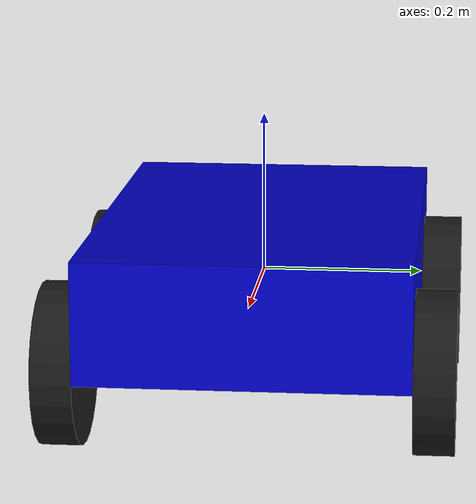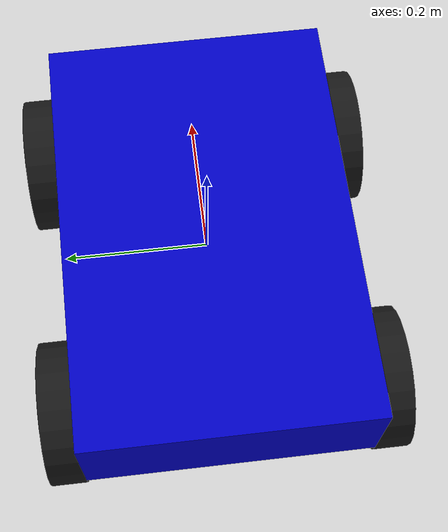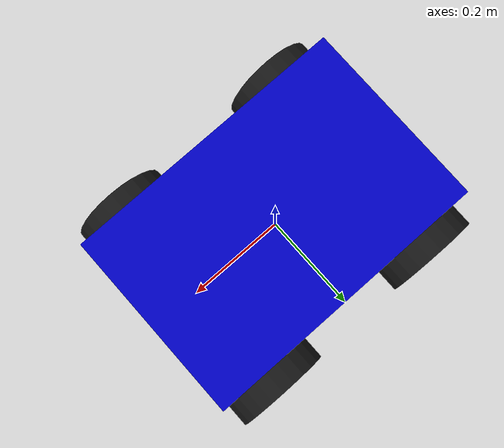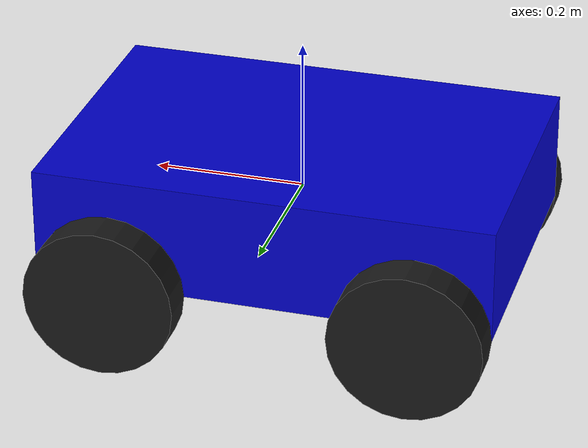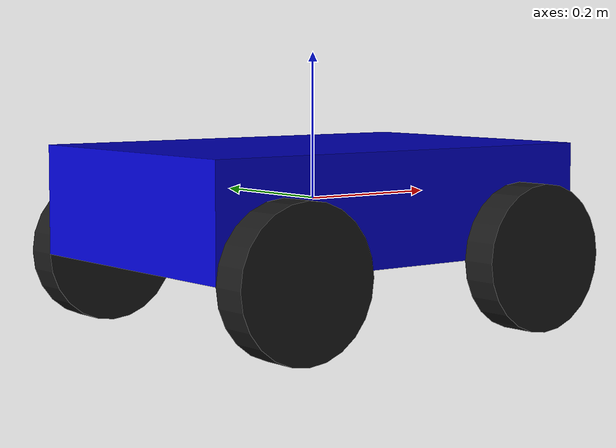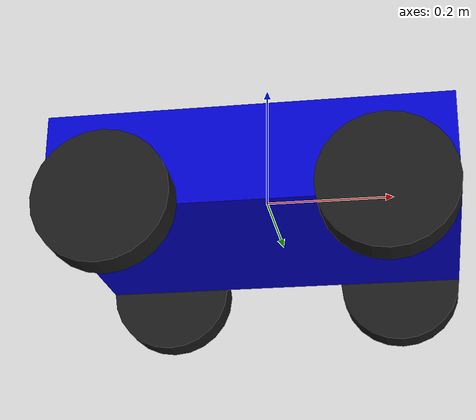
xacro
<?xml version="1.0"?>
<robot xmlns:xacro="http://www.ros.org/wiki/xacro" name="rover">

  <link name="foot"/>

  <joint name="base_joint" type="fixed">
    <parent link="foot"/>
    <child link="base_link"/>
    <origin xyz="0 0 0" rpy="0 0 0"/>
  </joint>

  <link name="base_link">
    <visual>
      <origin xyz="0 0 0" rpy="0 0 0"/>
      <geometry>
        <box size="0.6 0.4 0.15"/>
      </geometry>
      <material name="blue">
        <color rgba="0.0 0.0 0.8 1.0"/>
      </material>
    </visual>

    <collision>
      <origin xyz="0 0 0" rpy="0 0 0"/>
      <geometry>
        <box size="0.6 0.4 0.15"/>
      </geometry>
    </collision>

    <inertial>
      <origin xyz="0 0 0" rpy="0 0 0"/>
      <mass value="5.0"/>
      <inertia ixx="0.0785" ixy="0" ixz="0"
               iyy="0.1604" iyz="0"
               izz="0.2167"/>
    </inertial>
  </link>

  <xacro:macro name="wheel" params="name joint x y">
    <link name="${name}">
      <visual>
        <origin xyz="0 0 0" rpy="1.5708 0 0"/>
        <geometry><cylinder radius="0.1" length="0.05"/></geometry>
        <material name="black"><color rgba="0.1 0.1 0.1 1.0"/></material>
      </visual>

      <collision>
        <origin xyz="0 0 0" rpy="1.5708 0 0"/>
        <geometry><cylinder radius="0.1" length="0.05"/></geometry>
      </collision>

      <inertial>
        <origin xyz="0 0 0" rpy="0 0 0"/>
        <mass value="0.5"/>
        <inertia ixx="0.00135" ixy="0" ixz="0" iyy="0.0025" iyz="0" izz="0.00135"/>
      </inertial>
    </link>

    <joint name="${joint}" type="continuous">
      <parent link="base_link"/>
      <child  link="${name}"/>
      <origin xyz="${x} ${y} -0.075" rpy="0 0 0"/>
      <axis xyz="0 1 0"/>
    </joint>
  </xacro:macro>

  <xacro:wheel name="fl_wheel" joint="fl_joint" x="0.2"  y="0.225"/>
  <xacro:wheel name="fr_wheel" joint="fr_joint" x="0.2"  y="-0.225"/>
  <xacro:wheel name="rl_wheel" joint="rl_joint" x="-0.2" y="0.225"/>
  <xacro:wheel name="rr_wheel" joint="rr_joint" x="-0.2" y="-0.225"/>

</robot>
